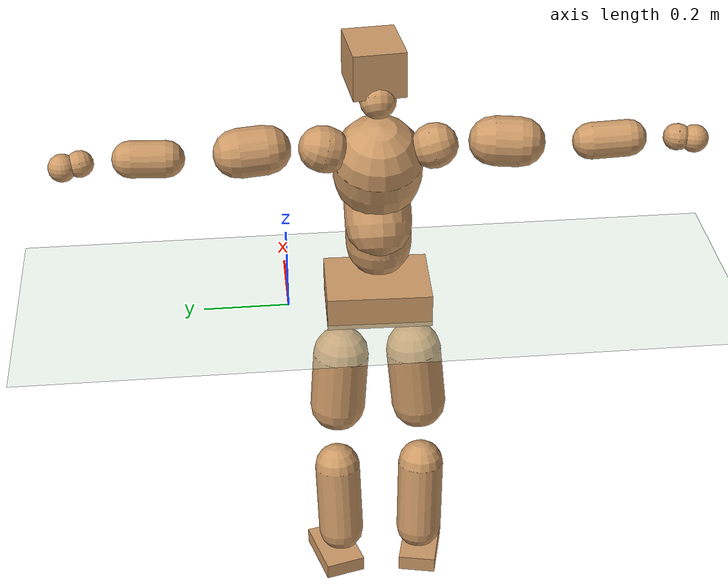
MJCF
<mujoco model="humanoid">
  <compiler coordinate="local" angle="radian"/>
  <default>
    <joint damping="0.0" armature="0.01" stiffness="0.0" limited="true"/>
    <geom conaffinity="1" condim="3" contype="7" margin="0.001" rgba="0.8 0.6 .4 1"/>
  </default>
  <asset>
    <texture type="skybox" builtin="gradient" rgb1=".4 .5 .6" rgb2="0 0 0" width="100" height="100"/>
    <texture builtin="flat" height="1278" mark="cross" markrgb="1 1 1" name="texgeom" random="0.01" rgb1="0.8 0.6 0.4" rgb2="0.8 0.6 0.4" type="cube" width="127"/>
    <texture builtin="checker" height="100" name="texplane" rgb1="0 0 0" rgb2="0.8 0.8 0.8" type="2d" width="100"/>
    <material name="MatPlane" reflectance="0.5" shininess="1" specular="1" texrepeat="60 60" texture="texplane"/>
    <material name="geom" texture="texgeom" texuniform="true"/>
  </asset>
  <worldbody>
    <light cutoff="100" diffuse="1 1 1" dir="-0 0 -1.3" directional="true" exponent="1" pos="0 0 1.3" specular=".1 .1 .1"/>
    <geom conaffinity="1" condim="3" name="floor" pos="0 0 0" rgba="0.8 0.9 0.8 1" size="100 100 .2" type="plane" material="MatPlane"/>
    <body name="Pelvis" pos="0.0011 -0.2093 0.0388">
      <freejoint name="Pelvis"/>
      <geom type="box" contype="1" conaffinity="1" density="5359.375177" pos="-0.0048 0.0001 -0.0125" size="0.095 0.1223 0.0399" quat="0.9999 0.0000 0.0000 -0.0132" name="Pelvis"/>
      <body name="L_Hip" pos="-0.0004 0.0815 -0.0883">
        <joint name="L_Hip_x" type="hinge" pos="0 0 0" axis="1 0 0" stiffness="1600" damping="160" armature="0.02" range="-180.0000 180.0000"/>
        <joint name="L_Hip_y" type="hinge" pos="0 0 0" axis="0 1 0" stiffness="1600" damping="160" armature="0.02" range="-180.0000 180.0000"/>
        <joint name="L_Hip_z" type="hinge" pos="0 0 0" axis="0 0 1" stiffness="1600" damping="160" armature="0.02" range="-180.0000 180.0000"/>
        <geom type="capsule" contype="1" conaffinity="1" density="2040.816327" size="0.0671" fromto="-0.0036 0.0069 -0.0968 -0.0089 0.0173 -0.2424" name="L_Hip"/>
        <body name="L_Knee" pos="-0.0125 0.0243 -0.3392">
          <joint name="L_Knee_x" type="hinge" pos="0 0 0" axis="1 0 0" stiffness="1600" damping="160" armature="0.02" range="-180.0000 180.0000"/>
          <joint name="L_Knee_y" type="hinge" pos="0 0 0" axis="0 1 0" stiffness="1600" damping="160" armature="0.02" range="-180.0000 180.0000"/>
          <joint name="L_Knee_z" type="hinge" pos="0 0 0" axis="0 0 1" stiffness="1600" damping="160" armature="0.02" range="-180.0000 180.0000"/>
          <geom type="capsule" contype="1" conaffinity="1" density="1234.567901" size="0.0561" fromto="-0.0111 -0.0023 -0.0853 -0.0351 -0.0073 -0.2690" name="L_Knee"/>
          <body name="L_Ankle" pos="-0.0462 -0.0097 -0.3543">
            <joint name="L_Ankle_x" type="hinge" pos="0 0 0" axis="1 0 0" stiffness="1600" damping="160" armature="0.02" range="-180.0000 180.0000"/>
            <joint name="L_Ankle_y" type="hinge" pos="0 0 0" axis="0 1 0" stiffness="1600" damping="160" armature="0.02" range="-180.0000 180.0000"/>
            <joint name="L_Ankle_z" type="hinge" pos="0 0 0" axis="0 0 1" stiffness="1600" damping="160" armature="0.02" range="-180.0000 180.0000"/>
            <geom type="box" contype="1" conaffinity="1" density="1000.000001" pos="0.0542 0.0144 -0.0260" size="0.0782 0.0493 0.0192" quat="0.9916 0.0000 0.0000 0.1296" name="L_Ankle"/>
            <body name="L_Toe" pos="0.1084 0.0288 -0.052">
              <joint name="L_Toe_x" type="hinge" pos="0 0 0" axis="1 0 0" stiffness="1000" damping="100" armature="0.02" range="-180.0000 180.0000"/>
              <joint name="L_Toe_y" type="hinge" pos="0 0 0" axis="0 1 0" stiffness="1000" damping="100" armature="0.02" range="-180.0000 180.0000"/>
              <joint name="L_Toe_z" type="hinge" pos="0 0 0" axis="0 0 1" stiffness="1000" damping="100" armature="0.02" range="-180.0000 180.0000"/>
              <geom type="box" contype="1" conaffinity="1" density="7810028.38252" pos="0.0000 0.0000 0.0264" size="0.001 0.0024 0.001" quat="0.9907 0.0000 0.0000 0.1358" name="L_Toe"/>
            </body>
          </body>
        </body>
      </body>
      <body name="R_Hip" pos="0.0019 -0.0795 -0.088">
        <joint name="R_Hip_x" type="hinge" pos="0 0 0" axis="1 0 0" stiffness="1600" damping="160" armature="0.02" range="-180.0000 180.0000"/>
        <joint name="R_Hip_y" type="hinge" pos="0 0 0" axis="0 1 0" stiffness="1600" damping="160" armature="0.02" range="-180.0000 180.0000"/>
        <joint name="R_Hip_z" type="hinge" pos="0 0 0" axis="0 0 1" stiffness="1600" damping="160" armature="0.02" range="-180.0000 180.0000"/>
        <geom type="capsule" contype="1" conaffinity="1" density="2040.816327" size="0.0665" fromto="-0.0039 -0.0084 -0.0961 -0.0100 -0.0219 -0.2497" name="R_Hip"/>
        <body name="R_Knee" pos="-0.0139 -0.0304 -0.3458">
          <joint name="R_Knee_x" type="hinge" pos="0 0 0" axis="1 0 0" stiffness="1600" damping="160" armature="0.02" range="-180.0000 180.0000"/>
          <joint name="R_Knee_y" type="hinge" pos="0 0 0" axis="0 1 0" stiffness="1600" damping="160" armature="0.02" range="-180.0000 180.0000"/>
          <joint name="R_Knee_z" type="hinge" pos="0 0 0" axis="0 0 1" stiffness="1600" damping="160" armature="0.02" range="-180.0000 180.0000"/>
          <geom type="capsule" contype="1" conaffinity="1" density="1234.567901" size="0.0562" fromto="-0.0109 0.0028 -0.0855 -0.0346 0.0089 -0.2722" name="R_Knee"/>
          <body name="R_Ankle" pos="-0.0455 0.0117 -0.3577">
            <joint name="R_Ankle_x" type="hinge" pos="0 0 0" axis="1 0 0" stiffness="1600" damping="160" armature="0.02" range="-180.0000 180.0000"/>
            <joint name="R_Ankle_y" type="hinge" pos="0 0 0" axis="0 1 0" stiffness="1600" damping="160" armature="0.02" range="-180.0000 180.0000"/>
            <joint name="R_Ankle_z" type="hinge" pos="0 0 0" axis="0 0 1" stiffness="1600" damping="160" armature="0.02" range="-180.0000 180.0000"/>
            <geom type="box" contype="1" conaffinity="1" density="1000.000027" pos="0.0563 -0.0130 -0.0227" size="0.079 0.0461 0.0201" quat="0.9936 0.0000 0.0000 -0.1133" name="R_Ankle"/>
            <body name="R_Toe" pos="0.1126 -0.026 -0.0455">
              <joint name="R_Toe_x" type="hinge" pos="0 0 0" axis="1 0 0" stiffness="1000" damping="100" armature="0.02" range="-180.0000 180.0000"/>
              <joint name="R_Toe_y" type="hinge" pos="0 0 0" axis="0 1 0" stiffness="1000" damping="100" armature="0.02" range="-180.0000 180.0000"/>
              <joint name="R_Toe_z" type="hinge" pos="0 0 0" axis="0 0 1" stiffness="1000" damping="100" armature="0.02" range="-180.0000 180.0000"/>
              <geom type="box" contype="1" conaffinity="1" density="7848935.600585" pos="0.0000 0.0000 0.0237" size="0.0009 0.0023 0.0011" quat="0.9947 0.0000 0.0000 -0.1031" name="R_Toe"/>
            </body>
          </body>
        </body>
      </body>
      <body name="Torso" pos="-0.0301 -0.0012 0.1015">
        <joint name="Torso_x" type="hinge" pos="0 0 0" axis="1 0 0" stiffness="2000" damping="200" armature="0.02" range="-180.0000 180.0000"/>
        <joint name="Torso_y" type="hinge" pos="0 0 0" axis="0 1 0" stiffness="2000" damping="200" armature="0.02" range="-180.0000 180.0000"/>
        <joint name="Torso_z" type="hinge" pos="0 0 0" axis="0 0 1" stiffness="2000" damping="200" armature="0.02" range="-180.0000 180.0000"/>
        <geom type="capsule" contype="1" conaffinity="1" density="2040.816327" size="0.0755" fromto="-0.0037 0.0014 0.0754 -0.0018 0.0007 0.0370" name="Torso"/>
        <body name="Spine" pos="-0.0055 0.0021 0.1124">
          <joint name="Spine_x" type="hinge" pos="0 0 0" axis="1 0 0" stiffness="2000" damping="200" armature="0.02" range="-180.0000 180.0000"/>
          <joint name="Spine_y" type="hinge" pos="0 0 0" axis="0 1 0" stiffness="2000" damping="200" armature="0.02" range="-180.0000 180.0000"/>
          <joint name="Spine_z" type="hinge" pos="0 0 0" axis="0 0 1" stiffness="2000" damping="200" armature="0.02" range="-180.0000 180.0000"/>
          <geom type="capsule" contype="1" conaffinity="1" density="2040.816327" size="0.077" fromto="0.0398 0.0009 0.0659 -0.0109 -0.0002 -0.0181" name="Spine"/>
          <body name="Chest" pos="0.0288 0.0006 0.0478">
            <joint name="Chest_x" type="hinge" pos="0 0 0" axis="1 0 0" stiffness="2000" damping="200" armature="0.02" range="-180.0000 180.0000"/>
            <joint name="Chest_y" type="hinge" pos="0 0 0" axis="0 1 0" stiffness="2000" damping="200" armature="0.02" range="-180.0000 180.0000"/>
            <joint name="Chest_z" type="hinge" pos="0 0 0" axis="0 0 1" stiffness="2000" damping="200" armature="0.02" range="-180.0000 180.0000"/>
            <geom type="capsule" contype="1" conaffinity="1" density="2040.816327" size="0.1009" fromto="-0.0300 -0.0009 0.0963 -0.0171 -0.0005 0.0550" name="Chest"/>
            <body name="Neck" pos="-0.0566 -0.0017 0.214">
              <joint name="Neck_x" type="hinge" pos="0 0 0" axis="1 0 0" stiffness="1000" damping="100" armature="0.02" range="-180.0000 180.0000"/>
              <joint name="Neck_y" type="hinge" pos="0 0 0" axis="0 1 0" stiffness="1000" damping="100" armature="0.02" range="-180.0000 180.0000"/>
              <joint name="Neck_z" type="hinge" pos="0 0 0" axis="0 0 1" stiffness="1000" damping="100" armature="0.02" range="-180.0000 180.0000"/>
              <geom type="capsule" contype="1" conaffinity="1" density="1000" size="0.0416" fromto="0.0261 0.0014 0.0324 0.0237 0.0013 0.0294" name="Neck"/>
              <body name="Head" pos="0.0499 0.0027 0.0618">
                <joint name="Head_x" type="hinge" pos="0 0 0" axis="1 0 0" stiffness="1000" damping="100" armature="0.02" range="-180.0000 180.0000"/>
                <joint name="Head_y" type="hinge" pos="0 0 0" axis="0 1 0" stiffness="1000" damping="100" armature="0.02" range="-180.0000 180.0000"/>
                <joint name="Head_z" type="hinge" pos="0 0 0" axis="0 0 1" stiffness="1000" damping="100" armature="0.02" range="-180.0000 180.0000"/>
                <geom type="box" contype="1" conaffinity="1" density="2249.999989" pos="0.0259 0.0023 0.0319" size="0.0743 0.0595 0.0528" quat="0.9990 0.0000 0.0000 0.0451" name="Head"/>
              </body>
            </body>
            <body name="L_Thorax" pos="-0.0394 0.0769 0.1208">
              <joint name="L_Thorax_x" type="hinge" pos="0 0 0" axis="1 0 0" stiffness="1000" damping="100" armature="0.02" range="-180.0000 180.0000"/>
              <joint name="L_Thorax_y" type="hinge" pos="0 0 0" axis="0 1 0" stiffness="1000" damping="100" armature="0.02" range="-180.0000 180.0000"/>
              <joint name="L_Thorax_z" type="hinge" pos="0 0 0" axis="0 0 1" stiffness="1000" damping="100" armature="0.02" range="-180.0000 180.0000"/>
              <geom type="capsule" contype="1" conaffinity="1" density="1000" size="0.0517" fromto="-0.0055 0.0485 0.0169 -0.0043 0.0376 0.0131" name="L_Thorax"/>
              <body name="L_Shoulder" pos="-0.0097 0.0862 0.03">
                <joint name="L_Shoulder_x" type="hinge" pos="0 0 0" axis="1 0 0" stiffness="1000" damping="100" armature="0.02" range="-720.0000 720.0000"/>
                <joint name="L_Shoulder_y" type="hinge" pos="0 0 0" axis="0 1 0" stiffness="1000" damping="100" armature="0.02" range="-720.0000 720.0000"/>
                <joint name="L_Shoulder_z" type="hinge" pos="0 0 0" axis="0 0 1" stiffness="1000" damping="100" armature="0.02" range="-720.0000 720.0000"/>
                <geom type="capsule" contype="1" conaffinity="1" density="1000" size="0.0549" fromto="-0.0093 0.0844 -0.0024 -0.0161 0.1466 -0.0042" name="L_Shoulder"/>
                <body name="L_Elbow" pos="-0.0254 0.2309 -0.0067">
                  <joint name="L_Elbow_x" type="hinge" pos="0 0 0" axis="1 0 0" stiffness="1000" damping="100" armature="0.02" range="-720.0000 720.0000"/>
                  <joint name="L_Elbow_y" type="hinge" pos="0 0 0" axis="0 1 0" stiffness="1000" damping="100" armature="0.02" range="-720.0000 720.0000"/>
                  <joint name="L_Elbow_z" type="hinge" pos="0 0 0" axis="0 0 1" stiffness="1000" damping="100" armature="0.02" range="-720.0000 720.0000"/>
                  <geom type="capsule" contype="1" conaffinity="1" density="1000" size="0.041" fromto="0.0004 0.0709 0.0026 0.0009 0.1471 0.0053" name="L_Elbow"/>
                  <body name="L_Wrist" pos="0.0013 0.218 0.0079">
                    <joint name="L_Wrist_x" type="hinge" pos="0 0 0" axis="1 0 0" stiffness="600" damping="60" armature="0.02" range="-180.0000 180.0000"/>
                    <joint name="L_Wrist_y" type="hinge" pos="0 0 0" axis="0 1 0" stiffness="600" damping="60" armature="0.02" range="-180.0000 180.0000"/>
                    <joint name="L_Wrist_z" type="hinge" pos="0 0 0" axis="0 0 1" stiffness="600" damping="60" armature="0.02" range="-180.0000 180.0000"/>
                    <geom type="capsule" contype="1" conaffinity="1" density="1000" size="0.0293" fromto="-0.0059 0.0368 -0.0044 -0.0063 0.0388 -0.0047" name="L_Wrist"/>
                    <body name="L_Hand" pos="-0.0122 0.0756 -0.0091">
                      <joint name="L_Hand_x" type="hinge" pos="0 0 0" axis="1 0 0" stiffness="600" damping="60" armature="0.02" range="-180.0000 180.0000"/>
                      <joint name="L_Hand_y" type="hinge" pos="0 0 0" axis="0 1 0" stiffness="600" damping="60" armature="0.02" range="-180.0000 180.0000"/>
                      <joint name="L_Hand_z" type="hinge" pos="0 0 0" axis="0 0 1" stiffness="600" damping="60" armature="0.02" range="-180.0000 180.0000"/>
                      <geom type="sphere" contype="1" conaffinity="1" density="1000" size="0.0307" pos="0.0000 0.0000 0.0000" name="L_Hand"/>
                    </body>
                  </body>
                </body>
              </body>
            </body>
            <body name="R_Thorax" pos="-0.0455 -0.0794 0.1192">
              <joint name="R_Thorax_x" type="hinge" pos="0 0 0" axis="1 0 0" stiffness="1000" damping="100" armature="0.02" range="-180.0000 180.0000"/>
              <joint name="R_Thorax_y" type="hinge" pos="0 0 0" axis="0 1 0" stiffness="1000" damping="100" armature="0.02" range="-180.0000 180.0000"/>
              <joint name="R_Thorax_z" type="hinge" pos="0 0 0" axis="0 0 1" stiffness="1000" damping="100" armature="0.02" range="-180.0000 180.0000"/>
              <geom type="capsule" contype="1" conaffinity="1" density="1000" size="0.0506" fromto="-0.0062 -0.0472 0.0173 -0.0054 -0.0417 0.0153" name="R_Thorax"/>
              <body name="R_Shoulder" pos="-0.0116 -0.0888 0.0326">
                <joint name="R_Shoulder_x" type="hinge" pos="0 0 0" axis="1 0 0" stiffness="1000" damping="100" armature="0.02" range="-720.0000 720.0000"/>
                <joint name="R_Shoulder_y" type="hinge" pos="0 0 0" axis="0 1 0" stiffness="1000" damping="100" armature="0.02" range="-720.0000 720.0000"/>
                <joint name="R_Shoulder_z" type="hinge" pos="0 0 0" axis="0 0 1" stiffness="1000" damping="100" armature="0.02" range="-720.0000 720.0000"/>
                <geom type="capsule" contype="1" conaffinity="1" density="1000" size="0.0557" fromto="-0.0084 -0.0852 -0.0041 -0.0142 -0.1439 -0.0069" name="R_Shoulder"/>
                <body name="R_Elbow" pos="-0.0226 -0.2291 -0.011">
                  <joint name="R_Elbow_x" type="hinge" pos="0 0 0" axis="1 0 0" stiffness="1000" damping="100" armature="0.02" range="-720.0000 720.0000"/>
                  <joint name="R_Elbow_y" type="hinge" pos="0 0 0" axis="0 1 0" stiffness="1000" damping="100" armature="0.02" range="-720.0000 720.0000"/>
                  <joint name="R_Elbow_z" type="hinge" pos="0 0 0" axis="0 0 1" stiffness="1000" damping="100" armature="0.02" range="-720.0000 720.0000"/>
                  <geom type="capsule" contype="1" conaffinity="1" density="1000" size="0.0412" fromto="-0.0003 -0.0711 0.0028 -0.0008 -0.1544 0.0062" name="R_Elbow"/>
                  <body name="R_Wrist" pos="-0.0011 -0.2255 0.009">
                    <joint name="R_Wrist_x" type="hinge" pos="0 0 0" axis="1 0 0" stiffness="600" damping="60" armature="0.02" range="-180.0000 180.0000"/>
                    <joint name="R_Wrist_y" type="hinge" pos="0 0 0" axis="0 1 0" stiffness="600" damping="60" armature="0.02" range="-180.0000 180.0000"/>
                    <joint name="R_Wrist_z" type="hinge" pos="0 0 0" axis="0 0 1" stiffness="600" damping="60" armature="0.02" range="-180.0000 180.0000"/>
                    <geom type="capsule" contype="1" conaffinity="1" density="1000" size="0.0302" fromto="-0.0049 -0.0373 -0.0034 -0.0051 -0.0393 -0.0036" name="R_Wrist"/>
                    <body name="R_Hand" pos="-0.01 -0.0766 -0.007">
                      <joint name="R_Hand_x" type="hinge" pos="0 0 0" axis="1 0 0" stiffness="600" damping="60" armature="0.02" range="-180.0000 180.0000"/>
                      <joint name="R_Hand_y" type="hinge" pos="0 0 0" axis="0 1 0" stiffness="600" damping="60" armature="0.02" range="-180.0000 180.0000"/>
                      <joint name="R_Hand_z" type="hinge" pos="0 0 0" axis="0 0 1" stiffness="600" damping="60" armature="0.02" range="-180.0000 180.0000"/>
                      <geom type="sphere" contype="1" conaffinity="1" density="1000" size="0.0311" pos="0.0000 0.0000 0.0000" name="R_Hand"/>
                    </body>
                  </body>
                </body>
              </body>
            </body>
          </body>
        </body>
      </body>
    </body>
  </worldbody>
  <actuator>
    <motor name="L_Hip_x" joint="L_Hip_x" gear="500"/>
    <motor name="L_Hip_y" joint="L_Hip_y" gear="500"/>
    <motor name="L_Hip_z" joint="L_Hip_z" gear="500"/>
    <motor name="L_Knee_x" joint="L_Knee_x" gear="500"/>
    <motor name="L_Knee_y" joint="L_Knee_y" gear="500"/>
    <motor name="L_Knee_z" joint="L_Knee_z" gear="500"/>
    <motor name="L_Ankle_x" joint="L_Ankle_x" gear="500"/>
    <motor name="L_Ankle_y" joint="L_Ankle_y" gear="500"/>
    <motor name="L_Ankle_z" joint="L_Ankle_z" gear="500"/>
    <motor name="L_Toe_x" joint="L_Toe_x" gear="500"/>
    <motor name="L_Toe_y" joint="L_Toe_y" gear="500"/>
    <motor name="L_Toe_z" joint="L_Toe_z" gear="500"/>
    <motor name="R_Hip_x" joint="R_Hip_x" gear="500"/>
    <motor name="R_Hip_y" joint="R_Hip_y" gear="500"/>
    <motor name="R_Hip_z" joint="R_Hip_z" gear="500"/>
    <motor name="R_Knee_x" joint="R_Knee_x" gear="500"/>
    <motor name="R_Knee_y" joint="R_Knee_y" gear="500"/>
    <motor name="R_Knee_z" joint="R_Knee_z" gear="500"/>
    <motor name="R_Ankle_x" joint="R_Ankle_x" gear="500"/>
    <motor name="R_Ankle_y" joint="R_Ankle_y" gear="500"/>
    <motor name="R_Ankle_z" joint="R_Ankle_z" gear="500"/>
    <motor name="R_Toe_x" joint="R_Toe_x" gear="500"/>
    <motor name="R_Toe_y" joint="R_Toe_y" gear="500"/>
    <motor name="R_Toe_z" joint="R_Toe_z" gear="500"/>
    <motor name="Torso_x" joint="Torso_x" gear="500"/>
    <motor name="Torso_y" joint="Torso_y" gear="500"/>
    <motor name="Torso_z" joint="Torso_z" gear="500"/>
    <motor name="Spine_x" joint="Spine_x" gear="500"/>
    <motor name="Spine_y" joint="Spine_y" gear="500"/>
    <motor name="Spine_z" joint="Spine_z" gear="500"/>
    <motor name="Chest_x" joint="Chest_x" gear="500"/>
    <motor name="Chest_y" joint="Chest_y" gear="500"/>
    <motor name="Chest_z" joint="Chest_z" gear="500"/>
    <motor name="Neck_x" joint="Neck_x" gear="500"/>
    <motor name="Neck_y" joint="Neck_y" gear="500"/>
    <motor name="Neck_z" joint="Neck_z" gear="500"/>
    <motor name="Head_x" joint="Head_x" gear="500"/>
    <motor name="Head_y" joint="Head_y" gear="500"/>
    <motor name="Head_z" joint="Head_z" gear="500"/>
    <motor name="L_Thorax_x" joint="L_Thorax_x" gear="500"/>
    <motor name="L_Thorax_y" joint="L_Thorax_y" gear="500"/>
    <motor name="L_Thorax_z" joint="L_Thorax_z" gear="500"/>
    <motor name="L_Shoulder_x" joint="L_Shoulder_x" gear="500"/>
    <motor name="L_Shoulder_y" joint="L_Shoulder_y" gear="500"/>
    <motor name="L_Shoulder_z" joint="L_Shoulder_z" gear="500"/>
    <motor name="L_Elbow_x" joint="L_Elbow_x" gear="500"/>
    <motor name="L_Elbow_y" joint="L_Elbow_y" gear="500"/>
    <motor name="L_Elbow_z" joint="L_Elbow_z" gear="500"/>
    <motor name="L_Wrist_x" joint="L_Wrist_x" gear="500"/>
    <motor name="L_Wrist_y" joint="L_Wrist_y" gear="500"/>
    <motor name="L_Wrist_z" joint="L_Wrist_z" gear="500"/>
    <motor name="L_Hand_x" joint="L_Hand_x" gear="500"/>
    <motor name="L_Hand_y" joint="L_Hand_y" gear="500"/>
    <motor name="L_Hand_z" joint="L_Hand_z" gear="500"/>
    <motor name="R_Thorax_x" joint="R_Thorax_x" gear="500"/>
    <motor name="R_Thorax_y" joint="R_Thorax_y" gear="500"/>
    <motor name="R_Thorax_z" joint="R_Thorax_z" gear="500"/>
    <motor name="R_Shoulder_x" joint="R_Shoulder_x" gear="500"/>
    <motor name="R_Shoulder_y" joint="R_Shoulder_y" gear="500"/>
    <motor name="R_Shoulder_z" joint="R_Shoulder_z" gear="500"/>
    <motor name="R_Elbow_x" joint="R_Elbow_x" gear="500"/>
    <motor name="R_Elbow_y" joint="R_Elbow_y" gear="500"/>
    <motor name="R_Elbow_z" joint="R_Elbow_z" gear="500"/>
    <motor name="R_Wrist_x" joint="R_Wrist_x" gear="500"/>
    <motor name="R_Wrist_y" joint="R_Wrist_y" gear="500"/>
    <motor name="R_Wrist_z" joint="R_Wrist_z" gear="500"/>
    <motor name="R_Hand_x" joint="R_Hand_x" gear="500"/>
    <motor name="R_Hand_y" joint="R_Hand_y" gear="500"/>
    <motor name="R_Hand_z" joint="R_Hand_z" gear="500"/>
  </actuator>
  <contact>
    <exclude body1="Torso" body2="Chest"/>
    <exclude body1="Head" body2="Chest"/>
    <exclude body1="R_Knee" body2="R_Toe"/>
    <exclude body1="R_Knee" body2="L_Ankle"/>
    <exclude body1="R_Knee" body2="L_Toe"/>
    <exclude body1="L_Knee" body2="L_Toe"/>
    <exclude body1="L_Knee" body2="R_Ankle"/>
    <exclude body1="L_Knee" body2="R_Toe"/>
    <exclude body1="L_Shoulder" body2="Chest"/>
    <exclude body1="R_Shoulder" body2="Chest"/>
  </contact>
  <sensor/>
  <size njmax="700" nconmax="700"/>
</mujoco>
